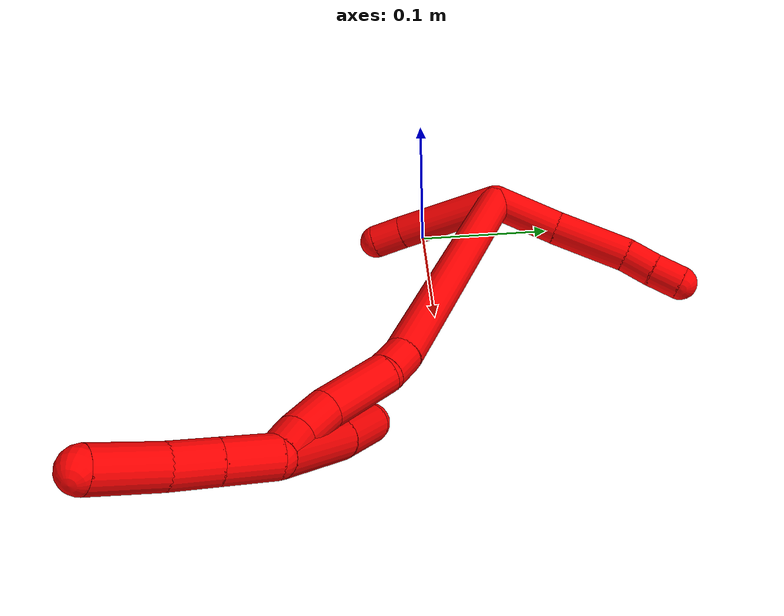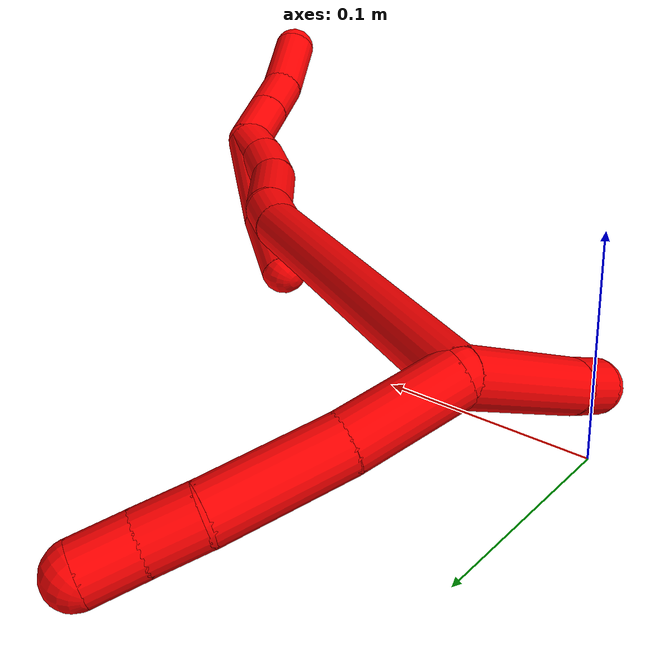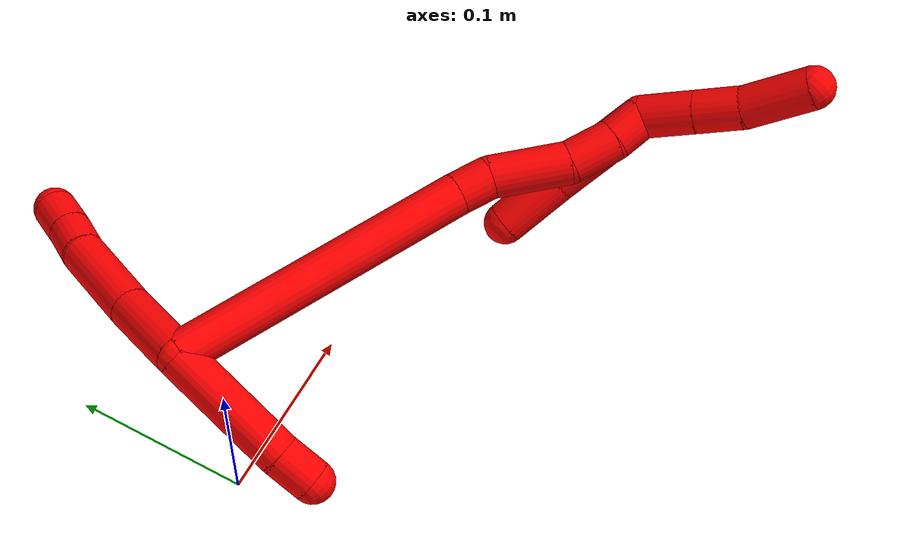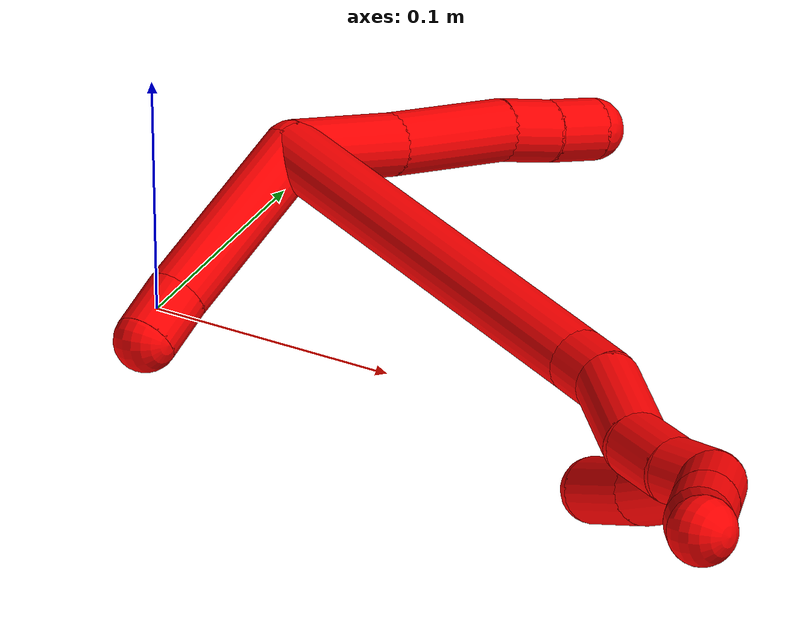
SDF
<sdf version="1.7">
 <world name="default">
  <model name="2">
   <static>0</static>
   <link name="2">
    <collision name="collision-cylinder-e_1_2_8">
     <pose>0.012551 0.021347 0.002244 -1.46607 0.529114 -0.478503</pose>
     <geometry><cylinder><radius>0.0125</radius><length>0.049729</length></cylinder></geometry>
     <surface>
      <friction><ode><mu>1.16</mu><mu2>1.16</mu2><slip1>0</slip1><slip2>0</slip2></ode></friction>
      <contact><ode><kp>1e+06</kp><kd>1</kd><max_vel>0</max_vel><min_depth>0.001</min_depth></ode></contact>
     </surface>
    </collision>
    <visual name="visual-cylinder-e_1_2_8">
     <pose>0.012551 0.021347 0.002244 -1.46607 0.529114 -0.478503</pose>
     <geometry><cylinder><radius>0.0125</radius><length>0.049729</length></cylinder></geometry>
     <material><ambient>1 0 0 1</ambient></material>
    </visual>
    <collision name="collision-cylinder-e_2_8_9">
     <pose>0.037646 0.067142 0.008277 -1.41704 0.469281 -0.404111</pose>
     <geometry><cylinder><radius>0.0125</radius><length>0.055478</length></cylinder></geometry>
     <surface>
      <friction><ode><mu>1.16</mu><mu2>1.16</mu2><slip1>0</slip1><slip2>0</slip2></ode></friction>
      <contact><ode><kp>1e+06</kp><kd>1</kd><max_vel>0</max_vel><min_depth>0.001</min_depth></ode></contact>
     </surface>
    </collision>
    <visual name="visual-cylinder-e_2_8_9">
     <pose>0.037646 0.067142 0.008277 -1.41704 0.469281 -0.404111</pose>
     <geometry><cylinder><radius>0.0125</radius><length>0.055478</length></cylinder></geometry>
     <material><ambient>1 0 0 1</ambient></material>
    </visual>
    <collision name="collision-cylinder-e_3_9_10">
     <pose>0.056164 0.100716 0.014948 -1.26484 0.557962 -0.413832</pose>
     <geometry><cylinder><radius>0.0125</radius><length>0.022561</length></cylinder></geometry>
     <surface>
      <friction><ode><mu>1.16</mu><mu2>1.16</mu2><slip1>0</slip1><slip2>0</slip2></ode></friction>
      <contact><ode><kp>1e+06</kp><kd>1</kd><max_vel>0</max_vel><min_depth>0.001</min_depth></ode></contact>
     </surface>
    </collision>
    <visual name="visual-cylinder-e_3_9_10">
     <pose>0.056164 0.100716 0.014948 -1.26484 0.557962 -0.413832</pose>
     <geometry><cylinder><radius>0.0125</radius><length>0.022561</length></cylinder></geometry>
     <material><ambient>1 0 0 1</ambient></material>
    </visual>
    <collision name="collision-cylinder-e_4_10_6">
     <pose>0.067635 0.119225 0.020124 -1.3311 0.517467 -0.409715</pose>
     <geometry><cylinder><radius>0.0125</radius><length>0.022232</length></cylinder></geometry>
     <surface>
      <friction><ode><mu>1.16</mu><mu2>1.16</mu2><slip1>0</slip1><slip2>0</slip2></ode></friction>
      <contact><ode><kp>1e+06</kp><kd>1</kd><max_vel>0</max_vel><min_depth>0.001</min_depth></ode></contact>
     </surface>
    </collision>
    <visual name="visual-cylinder-e_4_10_6">
     <pose>0.067635 0.119225 0.020124 -1.3311 0.517467 -0.409715</pose>
     <geometry><cylinder><radius>0.0125</radius><length>0.022232</length></cylinder></geometry>
     <material><ambient>1 0 0 1</ambient></material>
    </visual>
    <collision name="collision-cylinder-e_1_2_11">
     <pose>0.007783 -0.037679 -0.000936 1.59564 0.203643 0.208729</pose>
     <geometry><cylinder><radius>0.0125</radius><length>0.076971</length></cylinder></geometry>
     <surface>
      <friction><ode><mu>1.16</mu><mu2>1.16</mu2><slip1>0</slip1><slip2>0</slip2></ode></friction>
      <contact><ode><kp>1e+06</kp><kd>1</kd><max_vel>0</max_vel><min_depth>0.001</min_depth></ode></contact>
     </surface>
    </collision>
    <visual name="visual-cylinder-e_1_2_11">
     <pose>0.007783 -0.037679 -0.000936 1.59564 0.203643 0.208729</pose>
     <geometry><cylinder><radius>0.0125</radius><length>0.076971</length></cylinder></geometry>
     <material><ambient>1 0 0 1</ambient></material>
    </visual>
    <collision name="collision-cylinder-e_2_11_5">
     <pose>0.01787 -0.086612 -0.001084 1.50089 0.201438 0.18791</pose>
     <geometry><cylinder><radius>0.0125</radius><length>0.023029</length></cylinder></geometry>
     <surface>
      <friction><ode><mu>1.16</mu><mu2>1.16</mu2><slip1>0</slip1><slip2>0</slip2></ode></friction>
      <contact><ode><kp>1e+06</kp><kd>1</kd><max_vel>0</max_vel><min_depth>0.001</min_depth></ode></contact>
     </surface>
    </collision>
    <visual name="visual-cylinder-e_2_11_5">
     <pose>0.01787 -0.086612 -0.001084 1.50089 0.201438 0.18791</pose>
     <geometry><cylinder><radius>0.0125</radius><length>0.023029</length></cylinder></geometry>
     <material><ambient>1 0 0 1</ambient></material>
    </visual>
    <collision name="collision-cylinder-e_1_2_12">
     <pose>0.015029 -0.023545 0.087197 0.263727 0.164882 0.021918</pose>
     <geometry><cylinder><radius>0.0125</radius><length>0.183123</length></cylinder></geometry>
     <surface>
      <friction><ode><mu>1.16</mu><mu2>1.16</mu2><slip1>0</slip1><slip2>0</slip2></ode></friction>
      <contact><ode><kp>1e+06</kp><kd>1</kd><max_vel>0</max_vel><min_depth>0.001</min_depth></ode></contact>
     </surface>
    </collision>
    <visual name="visual-cylinder-e_1_2_12">
     <pose>0.015029 -0.023545 0.087197 0.263727 0.164882 0.021918</pose>
     <geometry><cylinder><radius>0.0125</radius><length>0.183123</length></cylinder></geometry>
     <material><ambient>1 0 0 1</ambient></material>
    </visual>
    <collision name="collision-cylinder-e_2_12_13">
     <pose>0.030253 -0.050751 0.184486 0.34808 0.018262 0.003211</pose>
     <geometry><cylinder><radius>0.0125</radius><length>0.021477</length></cylinder></geometry>
     <surface>
      <friction><ode><mu>1.16</mu><mu2>1.16</mu2><slip1>0</slip1><slip2>0</slip2></ode></friction>
      <contact><ode><kp>1e+06</kp><kd>1</kd><max_vel>0</max_vel><min_depth>0.001</min_depth></ode></contact>
     </surface>
    </collision>
    <visual name="visual-cylinder-e_2_12_13">
     <pose>0.030253 -0.050751 0.184486 0.34808 0.018262 0.003211</pose>
     <geometry><cylinder><radius>0.0125</radius><length>0.021477</length></cylinder></geometry>
     <material><ambient>1 0 0 1</ambient></material>
    </visual>
    <collision name="collision-cylinder-e_3_13_14">
     <pose>0.03033 -0.068362 0.212794 0.653514 -0.005202 -0.001763</pose>
     <geometry><cylinder><radius>0.0125</radius><length>0.045885</length></cylinder></geometry>
     <surface>
      <friction><ode><mu>1.16</mu><mu2>1.16</mu2><slip1>0</slip1><slip2>0</slip2></ode></friction>
      <contact><ode><kp>1e+06</kp><kd>1</kd><max_vel>0</max_vel><min_depth>0.001</min_depth></ode></contact>
     </surface>
    </collision>
    <visual name="visual-cylinder-e_3_13_14">
     <pose>0.03033 -0.068362 0.212794 0.653514 -0.005202 -0.001763</pose>
     <geometry><cylinder><radius>0.0125</radius><length>0.045885</length></cylinder></geometry>
     <material><ambient>1 0 0 1</ambient></material>
    </visual>
    <collision name="collision-cylinder-e_4_14_15">
     <pose>0.029599 -0.087264 0.244305 0.356664 -0.043066 -0.007764</pose>
     <geometry><cylinder><radius>0.0125</radius><length>0.028404</length></cylinder></geometry>
     <surface>
      <friction><ode><mu>1.16</mu><mu2>1.16</mu2><slip1>0</slip1><slip2>0</slip2></ode></friction>
      <contact><ode><kp>1e+06</kp><kd>1</kd><max_vel>0</max_vel><min_depth>0.001</min_depth></ode></contact>
     </surface>
    </collision>
    <visual name="visual-cylinder-e_4_14_15">
     <pose>0.029599 -0.087264 0.244305 0.356664 -0.043066 -0.007764</pose>
     <geometry><cylinder><radius>0.0125</radius><length>0.028404</length></cylinder></geometry>
     <material><ambient>1 0 0 1</ambient></material>
    </visual>
    <collision name="collision-cylinder-e_5_15_1">
     <pose>0.028399 -0.093874 0.268009 0.157776 -0.055841 -0.004415</pose>
     <geometry><cylinder><radius>0.0125</radius><length>0.021111</length></cylinder></geometry>
     <surface>
      <friction><ode><mu>1.16</mu><mu2>1.16</mu2><slip1>0</slip1><slip2>0</slip2></ode></friction>
      <contact><ode><kp>1e+06</kp><kd>1</kd><max_vel>0</max_vel><min_depth>0.001</min_depth></ode></contact>
     </surface>
    </collision>
    <visual name="visual-cylinder-e_5_15_1">
     <pose>0.028399 -0.093874 0.268009 0.157776 -0.055841 -0.004415</pose>
     <geometry><cylinder><radius>0.0125</radius><length>0.021111</length></cylinder></geometry>
     <material><ambient>1 0 0 1</ambient></material>
    </visual>
    <collision name="collision-cylinder-e_1_1_16">
     <pose>0.02178 -0.106902 0.287849 0.878405 -0.387465 -0.183826</pose>
     <geometry><cylinder><radius>0.0125</radius><length>0.031913</length></cylinder></geometry>
     <surface>
      <friction><ode><mu>1.16</mu><mu2>1.16</mu2><slip1>0</slip1><slip2>0</slip2></ode></friction>
      <contact><ode><kp>1e+06</kp><kd>1</kd><max_vel>0</max_vel><min_depth>0.001</min_depth></ode></contact>
     </surface>
    </collision>
    <visual name="visual-cylinder-e_1_1_16">
     <pose>0.02178 -0.106902 0.287849 0.878405 -0.387465 -0.183826</pose>
     <geometry><cylinder><radius>0.0125</radius><length>0.031913</length></cylinder></geometry>
     <material><ambient>1 0 0 1</ambient></material>
    </visual>
    <collision name="collision-cylinder-e_2_16_17">
     <pose>0.010594 -0.127983 0.305374 0.875896 -0.387402 -0.1832</pose>
     <geometry><cylinder><radius>0.0125</radius><length>0.027305</length></cylinder></geometry>
     <surface>
      <friction><ode><mu>1.16</mu><mu2>1.16</mu2><slip1>0</slip1><slip2>0</slip2></ode></friction>
      <contact><ode><kp>1e+06</kp><kd>1</kd><max_vel>0</max_vel><min_depth>0.001</min_depth></ode></contact>
     </surface>
    </collision>
    <visual name="visual-cylinder-e_2_16_17">
     <pose>0.010594 -0.127983 0.305374 0.875896 -0.387402 -0.1832</pose>
     <geometry><cylinder><radius>0.0125</radius><length>0.027305</length></cylinder></geometry>
     <material><ambient>1 0 0 1</ambient></material>
    </visual>
    <collision name="collision-cylinder-e_3_17_4">
     <pose>-0.004446 -0.149285 0.327024 0.707455 -0.505951 -0.19034</pose>
     <geometry><cylinder><radius>0.0125</radius><length>0.040782</length></cylinder></geometry>
     <surface>
      <friction><ode><mu>1.16</mu><mu2>1.16</mu2><slip1>0</slip1><slip2>0</slip2></ode></friction>
      <contact><ode><kp>1e+06</kp><kd>1</kd><max_vel>0</max_vel><min_depth>0.001</min_depth></ode></contact>
     </surface>
    </collision>
    <visual name="visual-cylinder-e_3_17_4">
     <pose>-0.004446 -0.149285 0.327024 0.707455 -0.505951 -0.19034</pose>
     <geometry><cylinder><radius>0.0125</radius><length>0.040782</length></cylinder></geometry>
     <material><ambient>1 0 0 1</ambient></material>
    </visual>
    <collision name="collision-cylinder-e_1_1_18">
     <pose>0.040934 -0.088259 0.251965 -2.87333 0.446226 -2.06851</pose>
     <geometry><cylinder><radius>0.0125</radius><length>0.060824</length></cylinder></geometry>
     <surface>
      <friction><ode><mu>1.16</mu><mu2>1.16</mu2><slip1>0</slip1><slip2>0</slip2></ode></friction>
      <contact><ode><kp>1e+06</kp><kd>1</kd><max_vel>0</max_vel><min_depth>0.001</min_depth></ode></contact>
     </surface>
    </collision>
    <visual name="visual-cylinder-e_1_1_18">
     <pose>0.040934 -0.088259 0.251965 -2.87333 0.446226 -2.06851</pose>
     <geometry><cylinder><radius>0.0125</radius><length>0.060824</length></cylinder></geometry>
     <material><ambient>1 0 0 1</ambient></material>
    </visual>
    <collision name="collision-cylinder-e_2_18_3">
     <pose>0.060626 -0.077075 0.207477 -2.92797 0.341889 -2.03004</pose>
     <geometry><cylinder><radius>0.0125</radius><length>0.039176</length></cylinder></geometry>
     <surface>
      <friction><ode><mu>1.16</mu><mu2>1.16</mu2><slip1>0</slip1><slip2>0</slip2></ode></friction>
      <contact><ode><kp>1e+06</kp><kd>1</kd><max_vel>0</max_vel><min_depth>0.001</min_depth></ode></contact>
     </surface>
    </collision>
    <visual name="visual-cylinder-e_2_18_3">
     <pose>0.060626 -0.077075 0.207477 -2.92797 0.341889 -2.03004</pose>
     <geometry><cylinder><radius>0.0125</radius><length>0.039176</length></cylinder></geometry>
     <material><ambient>1 0 0 1</ambient></material>
    </visual>
    <collision name="collision-sphere-3">
     <pose>0.067193 -0.073163 0.189442 0 -0 0</pose>
     <geometry><sphere><radius>0.0125</radius></sphere></geometry>
     <surface>
      <friction><ode><mu>1.16</mu><mu2>1.16</mu2><slip1>0</slip1><slip2>0</slip2></ode></friction>
      <contact><ode><kp>1e+06</kp><kd>1</kd><max_vel>0</max_vel><min_depth>0.001</min_depth></ode></contact>
     </surface>
    </collision>
    <visual name="visual-sphere-3">
     <pose>0.067193 -0.073163 0.189442 0 -0 0</pose>
     <geometry><sphere><radius>0.0125</radius></sphere></geometry>
     <material><ambient>1 0 0 1</ambient></material>
    </visual>
    <collision name="collision-sphere-11">
     <pose>0.015567 -0.075358 -0.001872 0 -0 0</pose>
     <geometry><sphere><radius>0.0125</radius></sphere></geometry>
     <surface>
      <friction><ode><mu>1.16</mu><mu2>1.16</mu2><slip1>0</slip1><slip2>0</slip2></ode></friction>
      <contact><ode><kp>1e+06</kp><kd>1</kd><max_vel>0</max_vel><min_depth>0.001</min_depth></ode></contact>
     </surface>
    </collision>
    <visual name="visual-sphere-11">
     <pose>0.015567 -0.075358 -0.001872 0 -0 0</pose>
     <geometry><sphere><radius>0.0125</radius></sphere></geometry>
     <material><ambient>1 0 0 1</ambient></material>
    </visual>
    <collision name="collision-sphere-6">
     <pose>0.073134 0.12861 0.022417 0 -0 0</pose>
     <geometry><sphere><radius>0.0125</radius></sphere></geometry>
     <surface>
      <friction><ode><mu>1.16</mu><mu2>1.16</mu2><slip1>0</slip1><slip2>0</slip2></ode></friction>
      <contact><ode><kp>1e+06</kp><kd>1</kd><max_vel>0</max_vel><min_depth>0.001</min_depth></ode></contact>
     </surface>
    </collision>
    <visual name="visual-sphere-6">
     <pose>0.073134 0.12861 0.022417 0 -0 0</pose>
     <geometry><sphere><radius>0.0125</radius></sphere></geometry>
     <material><ambient>1 0 0 1</ambient></material>
    </visual>
    <collision name="collision-sphere-10">
     <pose>0.062137 0.109841 0.01783 0 -0 0</pose>
     <geometry><sphere><radius>0.0125</radius></sphere></geometry>
     <surface>
      <friction><ode><mu>1.16</mu><mu2>1.16</mu2><slip1>0</slip1><slip2>0</slip2></ode></friction>
      <contact><ode><kp>1e+06</kp><kd>1</kd><max_vel>0</max_vel><min_depth>0.001</min_depth></ode></contact>
     </surface>
    </collision>
    <visual name="visual-sphere-10">
     <pose>0.062137 0.109841 0.01783 0 -0 0</pose>
     <geometry><sphere><radius>0.0125</radius></sphere></geometry>
     <material><ambient>1 0 0 1</ambient></material>
    </visual>
    <collision name="collision-sphere-9">
     <pose>0.050191 0.09159 0.012066 0 -0 0</pose>
     <geometry><sphere><radius>0.0125</radius></sphere></geometry>
     <surface>
      <friction><ode><mu>1.16</mu><mu2>1.16</mu2><slip1>0</slip1><slip2>0</slip2></ode></friction>
      <contact><ode><kp>1e+06</kp><kd>1</kd><max_vel>0</max_vel><min_depth>0.001</min_depth></ode></contact>
     </surface>
    </collision>
    <visual name="visual-sphere-9">
     <pose>0.050191 0.09159 0.012066 0 -0 0</pose>
     <geometry><sphere><radius>0.0125</radius></sphere></geometry>
     <material><ambient>1 0 0 1</ambient></material>
    </visual>
    <collision name="collision-sphere-2">
     <geometry><sphere><radius>0.0125</radius></sphere></geometry>
     <surface>
      <friction><ode><mu>1.16</mu><mu2>1.16</mu2><slip1>0</slip1><slip2>0</slip2></ode></friction>
      <contact><ode><kp>1e+06</kp><kd>1</kd><max_vel>0</max_vel><min_depth>0.001</min_depth></ode></contact>
     </surface>
    </collision>
    <visual name="visual-sphere-2">
     <geometry><sphere><radius>0.0125</radius></sphere></geometry>
     <material><ambient>1 0 0 1</ambient></material>
    </visual>
    <collision name="collision-sphere-8">
     <pose>0.025101 0.042693 0.004488 0 -0 0</pose>
     <geometry><sphere><radius>0.0125</radius></sphere></geometry>
     <surface>
      <friction><ode><mu>1.16</mu><mu2>1.16</mu2><slip1>0</slip1><slip2>0</slip2></ode></friction>
      <contact><ode><kp>1e+06</kp><kd>1</kd><max_vel>0</max_vel><min_depth>0.001</min_depth></ode></contact>
     </surface>
    </collision>
    <visual name="visual-sphere-8">
     <pose>0.025101 0.042693 0.004488 0 -0 0</pose>
     <geometry><sphere><radius>0.0125</radius></sphere></geometry>
     <material><ambient>1 0 0 1</ambient></material>
    </visual>
    <collision name="collision-sphere-5">
     <pose>0.020174 -0.097865 -0.000296 0 -0 0</pose>
     <geometry><sphere><radius>0.0125</radius></sphere></geometry>
     <surface>
      <friction><ode><mu>1.16</mu><mu2>1.16</mu2><slip1>0</slip1><slip2>0</slip2></ode></friction>
      <contact><ode><kp>1e+06</kp><kd>1</kd><max_vel>0</max_vel><min_depth>0.001</min_depth></ode></contact>
     </surface>
    </collision>
    <visual name="visual-sphere-5">
     <pose>0.020174 -0.097865 -0.000296 0 -0 0</pose>
     <geometry><sphere><radius>0.0125</radius></sphere></geometry>
     <material><ambient>1 0 0 1</ambient></material>
    </visual>
    <collision name="collision-sphere-12">
     <pose>0.030057 -0.047089 0.174394 0 -0 0</pose>
     <geometry><sphere><radius>0.0125</radius></sphere></geometry>
     <surface>
      <friction><ode><mu>1.16</mu><mu2>1.16</mu2><slip1>0</slip1><slip2>0</slip2></ode></friction>
      <contact><ode><kp>1e+06</kp><kd>1</kd><max_vel>0</max_vel><min_depth>0.001</min_depth></ode></contact>
     </surface>
    </collision>
    <visual name="visual-sphere-12">
     <pose>0.030057 -0.047089 0.174394 0 -0 0</pose>
     <geometry><sphere><radius>0.0125</radius></sphere></geometry>
     <material><ambient>1 0 0 1</ambient></material>
    </visual>
    <collision name="collision-sphere-13">
     <pose>0.030449 -0.054414 0.194579 0 -0 0</pose>
     <geometry><sphere><radius>0.0125</radius></sphere></geometry>
     <surface>
      <friction><ode><mu>1.16</mu><mu2>1.16</mu2><slip1>0</slip1><slip2>0</slip2></ode></friction>
      <contact><ode><kp>1e+06</kp><kd>1</kd><max_vel>0</max_vel><min_depth>0.001</min_depth></ode></contact>
     </surface>
    </collision>
    <visual name="visual-sphere-13">
     <pose>0.030449 -0.054414 0.194579 0 -0 0</pose>
     <geometry><sphere><radius>0.0125</radius></sphere></geometry>
     <material><ambient>1 0 0 1</ambient></material>
    </visual>
    <collision name="collision-sphere-14">
     <pose>0.030211 -0.08231 0.231009 0 -0 0</pose>
     <geometry><sphere><radius>0.0125</radius></sphere></geometry>
     <surface>
      <friction><ode><mu>1.16</mu><mu2>1.16</mu2><slip1>0</slip1><slip2>0</slip2></ode></friction>
      <contact><ode><kp>1e+06</kp><kd>1</kd><max_vel>0</max_vel><min_depth>0.001</min_depth></ode></contact>
     </surface>
    </collision>
    <visual name="visual-sphere-14">
     <pose>0.030211 -0.08231 0.231009 0 -0 0</pose>
     <geometry><sphere><radius>0.0125</radius></sphere></geometry>
     <material><ambient>1 0 0 1</ambient></material>
    </visual>
    <collision name="collision-sphere-15">
     <pose>0.028988 -0.092218 0.257601 0 -0 0</pose>
     <geometry><sphere><radius>0.0125</radius></sphere></geometry>
     <surface>
      <friction><ode><mu>1.16</mu><mu2>1.16</mu2><slip1>0</slip1><slip2>0</slip2></ode></friction>
      <contact><ode><kp>1e+06</kp><kd>1</kd><max_vel>0</max_vel><min_depth>0.001</min_depth></ode></contact>
     </surface>
    </collision>
    <visual name="visual-sphere-15">
     <pose>0.028988 -0.092218 0.257601 0 -0 0</pose>
     <geometry><sphere><radius>0.0125</radius></sphere></geometry>
     <material><ambient>1 0 0 1</ambient></material>
    </visual>
    <collision name="collision-sphere-1">
     <pose>0.027809 -0.09553 0.278418 0 -0 0</pose>
     <geometry><sphere><radius>0.0125</radius></sphere></geometry>
     <surface>
      <friction><ode><mu>1.16</mu><mu2>1.16</mu2><slip1>0</slip1><slip2>0</slip2></ode></friction>
      <contact><ode><kp>1e+06</kp><kd>1</kd><max_vel>0</max_vel><min_depth>0.001</min_depth></ode></contact>
     </surface>
    </collision>
    <visual name="visual-sphere-1">
     <pose>0.027809 -0.09553 0.278418 0 -0 0</pose>
     <geometry><sphere><radius>0.0125</radius></sphere></geometry>
     <material><ambient>1 0 0 1</ambient></material>
    </visual>
    <collision name="collision-sphere-18">
     <pose>0.054059 -0.080987 0.225512 0 -0 0</pose>
     <geometry><sphere><radius>0.0125</radius></sphere></geometry>
     <surface>
      <friction><ode><mu>1.16</mu><mu2>1.16</mu2><slip1>0</slip1><slip2>0</slip2></ode></friction>
      <contact><ode><kp>1e+06</kp><kd>1</kd><max_vel>0</max_vel><min_depth>0.001</min_depth></ode></contact>
     </surface>
    </collision>
    <visual name="visual-sphere-18">
     <pose>0.054059 -0.080987 0.225512 0 -0 0</pose>
     <geometry><sphere><radius>0.0125</radius></sphere></geometry>
     <material><ambient>1 0 0 1</ambient></material>
    </visual>
    <collision name="collision-sphere-16">
     <pose>0.015751 -0.118274 0.29728 0 -0 0</pose>
     <geometry><sphere><radius>0.0125</radius></sphere></geometry>
     <surface>
      <friction><ode><mu>1.16</mu><mu2>1.16</mu2><slip1>0</slip1><slip2>0</slip2></ode></friction>
      <contact><ode><kp>1e+06</kp><kd>1</kd><max_vel>0</max_vel><min_depth>0.001</min_depth></ode></contact>
     </surface>
    </collision>
    <visual name="visual-sphere-16">
     <pose>0.015751 -0.118274 0.29728 0 -0 0</pose>
     <geometry><sphere><radius>0.0125</radius></sphere></geometry>
     <material><ambient>1 0 0 1</ambient></material>
    </visual>
    <collision name="collision-sphere-17">
     <pose>0.005436 -0.137693 0.313468 0 -0 0</pose>
     <geometry><sphere><radius>0.0125</radius></sphere></geometry>
     <surface>
      <friction><ode><mu>1.16</mu><mu2>1.16</mu2><slip1>0</slip1><slip2>0</slip2></ode></friction>
      <contact><ode><kp>1e+06</kp><kd>1</kd><max_vel>0</max_vel><min_depth>0.001</min_depth></ode></contact>
     </surface>
    </collision>
    <visual name="visual-sphere-17">
     <pose>0.005436 -0.137693 0.313468 0 -0 0</pose>
     <geometry><sphere><radius>0.0125</radius></sphere></geometry>
     <material><ambient>1 0 0 1</ambient></material>
    </visual>
    <collision name="collision-sphere-4">
     <pose>-0.014329 -0.160876 0.34058 0 -0 0</pose>
     <geometry><sphere><radius>0.0125</radius></sphere></geometry>
     <surface>
      <friction><ode><mu>1.16</mu><mu2>1.16</mu2><slip1>0</slip1><slip2>0</slip2></ode></friction>
      <contact><ode><kp>1e+06</kp><kd>1</kd><max_vel>0</max_vel><min_depth>0.001</min_depth></ode></contact>
     </surface>
    </collision>
    <visual name="visual-sphere-4">
     <pose>-0.014329 -0.160876 0.34058 0 -0 0</pose>
     <geometry><sphere><radius>0.0125</radius></sphere></geometry>
     <material><ambient>1 0 0 1</ambient></material>
    </visual>
    <inertial>
     <pose>0.024528 -0.039422 0.130486 0 -0 0</pose>
     <mass>0.75</mass>
     <inertia>
      <ixx>0.000588</ixx>
      <ixy>0</ixy>
      <ixz>0</ixz>
      <iyy>0.000527</iyy>
      <iyz>0</iyz>
      <izz>6.5e-05</izz>
     </inertia>
    </inertial>
   </link>
   <pose>0.030585 0.053083 0.050674 0.765805 1.27429 0.55045</pose>
  </model>
 </world>
</sdf>
